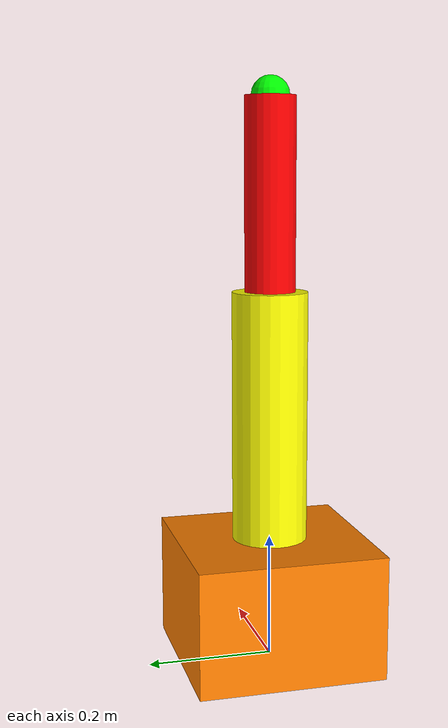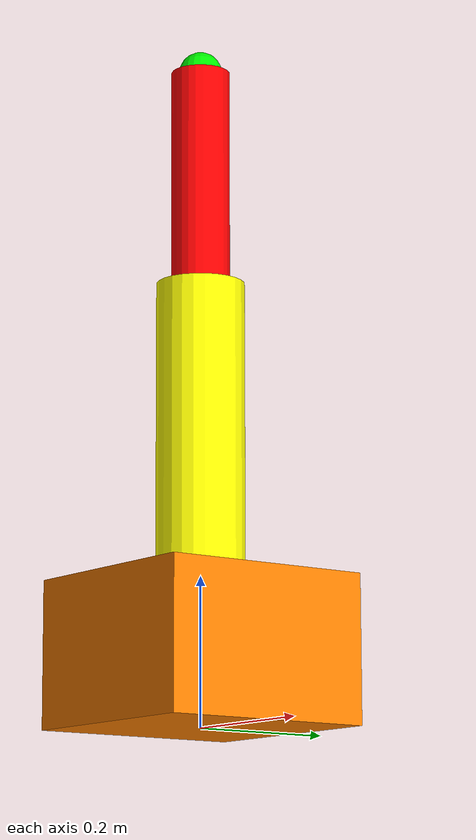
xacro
<?xml version="1.0"?>
<robot xmlns:xacro="http://www.ros.org/wiki/xacro" name="simple_arm">
  <!-- Simple 3-DOF arm: base(yaw) → shoulder(pitch) → elbow(pitch) -->

  <link name="arm_base">
    <visual>
      <origin xyz="0 0 0.1" rpy="0 0 0"/>
      <geometry><box size="0.3 0.3 0.2"/></geometry>
      <material name="orange"><color rgba="1 0.5 0 1"/></material>
    </visual>
    <collision>
      <origin xyz="0 0 0.1" rpy="0 0 0"/>
      <geometry><box size="0.3 0.3 0.2"/></geometry>
    </collision>
    <inertial>
      <origin xyz="0 0 0.1" rpy="0 0 0"/>
      <mass value="15"/>
      <inertia ixx="0.2" ixy="0" ixz="0" iyy="0.2" iyz="0" izz="0.2"/>
    </inertial>
  </link>

  <link name="arm_shoulder">
    <visual>
      <origin xyz="0 0 0.2" rpy="0 0 0"/>
      <geometry><cylinder length="0.4" radius="0.06"/></geometry>
      <material name="yellow"><color rgba="1 1 0 1"/></material>
    </visual>
    <collision>
      <origin xyz="0 0 0.2" rpy="0 0 0"/>
      <geometry><cylinder length="0.4" radius="0.06"/></geometry>
    </collision>
    <inertial>
      <origin xyz="0 0 0.2" rpy="0 0 0"/>
      <mass value="8"/>
      <inertia ixx="0.1" ixy="0" ixz="0" iyy="0.1" iyz="0" izz="0.02"/>
    </inertial>
  </link>

  <link name="arm_elbow">
    <visual>
      <origin xyz="0 0 0.15" rpy="0 0 0"/>
      <geometry><cylinder length="0.3" radius="0.04"/></geometry>
      <material name="red"><color rgba="1 0 0 1"/></material>
    </visual>
    <collision>
      <origin xyz="0 0 0.15" rpy="0 0 0"/>
      <geometry><cylinder length="0.3" radius="0.04"/></geometry>
    </collision>
    <inertial>
      <origin xyz="0 0 0.15" rpy="0 0 0"/>
      <mass value="3"/>
      <inertia ixx="0.02" ixy="0" ixz="0" iyy="0.02" iyz="0" izz="0.005"/>
    </inertial>
  </link>

  <!-- Joint 1: base rotates around Z (yaw) -->
  <joint name="arm_joint1" type="revolute">
    <parent link="arm_base"/>
    <child link="arm_shoulder"/>
    <origin xyz="0 0 0.2" rpy="0 0 0"/>
    <axis xyz="0 0 1"/>
    <limit lower="-1.57" upper="1.57" effort="100" velocity="1.0"/>
  </joint>

  <!-- Joint 2: shoulder rotates around Y (pitch) -->
  <joint name="arm_joint2" type="revolute">
    <parent link="arm_shoulder"/>
    <child link="arm_elbow"/>
    <origin xyz="0 0 0.4" rpy="0 0 0"/>
    <axis xyz="0 1 0"/>
    <limit lower="-1.57" upper="1.57" effort="50" velocity="1.0"/>
  </joint>

  <!-- Tool tip visual (attached to elbow) -->
  <link name="arm_tip">
    <visual>
      <geometry><sphere radius="0.03"/></geometry>
      <material name="green"><color rgba="0 1 0 1"/></material>
    </visual>
  </link>

  <joint name="arm_joint3" type="fixed">
    <parent link="arm_elbow"/>
    <child link="arm_tip"/>
    <origin xyz="0 0 0.3" rpy="0 0 0"/>
  </joint>
</robot>
